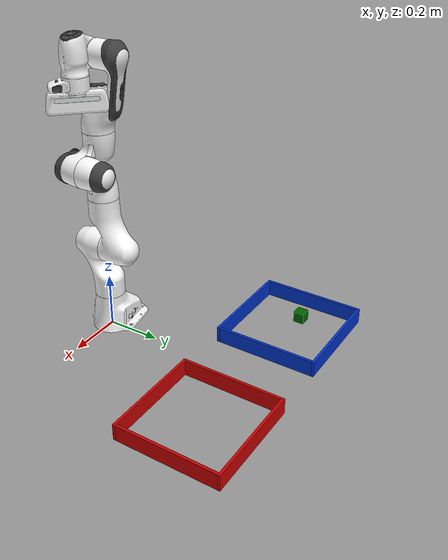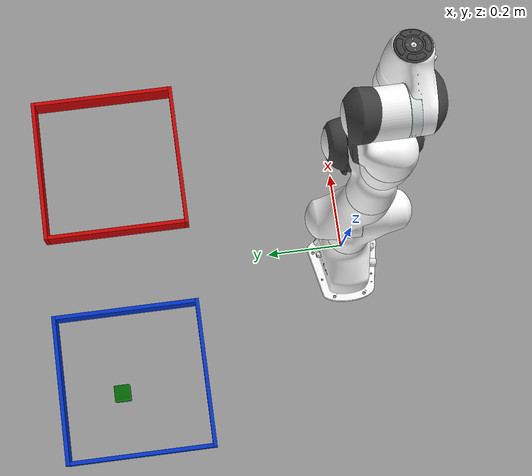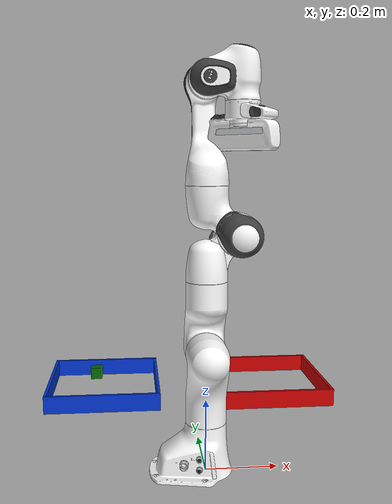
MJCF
<mujoco model="panda">
  <compiler angle="radian" meshdir="assets" autolimits="true"/>

  <default>
    <default class="panda">
      <material specular="0.5" shininess="0.25"/>
      <joint armature="0.1" damping="5" axis="0 0 1" range="-2.8973 2.8973"/>
      <general dyntype="none" biastype="affine" ctrlrange="-2.8973 2.8973" forcerange="-87 87"/>
      <default class="finger">
        <joint axis="0 1 0" type="slide" range="0 0.04" stiffness="1000" damping="100"/>
      </default>

      <default class="visual">
        <geom type="mesh" contype="0" conaffinity="0" group="2"/>
      </default>
      <default class="collision">
        <geom type="mesh" group="3"/>
        <default class="finger_collision">
          <geom type="box" size="0.01 0.005 0.035" pos="0 0.0055 0.0445"/>
        </default>
      </default>
    </default>
  </default>

  <asset>
    <material class="panda" name="white" rgba="1 1 1 1"/>
    <material class="panda" name="off_white" rgba="0.901961 0.921569 0.929412 1"/>
    <material class="panda" name="black" rgba="0.25 0.25 0.25 1"/>
    <material class="panda" name="green" rgba="0 1 0 1"/>
    <material class="panda" name="light_blue" rgba="0.039216 0.541176 0.780392 1"/>

    <!-- Collision meshes -->
    <mesh name="link0_c" file="link0.stl"/>
    <mesh name="link1_c" file="link1.stl"/>
    <mesh name="link2_c" file="link2.stl"/>
    <mesh name="link3_c" file="link3.stl"/>
    <mesh name="link4_c" file="link4.stl"/>
    <mesh name="link5_c0" file="link5_collision_0.obj"/>
    <mesh name="link5_c1" file="link5_collision_1.obj"/>
    <mesh name="link5_c2" file="link5_collision_2.obj"/>
    <mesh name="link6_c" file="link6.stl"/>
    <mesh name="link7_c" file="link7.stl"/>
    <mesh name="hand_c" file="hand.stl"/>

    <!-- Visual meshes -->
    <mesh file="link0_0.obj"/>
    <mesh file="link0_1.obj"/>
    <mesh file="link0_2.obj"/>
    <mesh file="link0_3.obj"/>
    <mesh file="link0_4.obj"/>
    <mesh file="link0_5.obj"/>
    <mesh file="link0_7.obj"/>
    <mesh file="link0_8.obj"/>
    <mesh file="link0_9.obj"/>
    <mesh file="link0_10.obj"/>
    <mesh file="link0_11.obj"/>
    <mesh file="link1.obj"/>
    <mesh file="link2.obj"/>
    <mesh file="link3_0.obj"/>
    <mesh file="link3_1.obj"/>
    <mesh file="link3_2.obj"/>
    <mesh file="link3_3.obj"/>
    <mesh file="link4_0.obj"/>
    <mesh file="link4_1.obj"/>
    <mesh file="link4_2.obj"/>
    <mesh file="link4_3.obj"/>
    <mesh file="link5_0.obj"/>
    <mesh file="link5_1.obj"/>
    <mesh file="link5_2.obj"/>
    <mesh file="link6_0.obj"/>
    <mesh file="link6_1.obj"/>
    <mesh file="link6_2.obj"/>
    <mesh file="link6_3.obj"/>
    <mesh file="link6_4.obj"/>
    <mesh file="link6_5.obj"/>
    <mesh file="link6_6.obj"/>
    <mesh file="link6_7.obj"/>
    <mesh file="link6_8.obj"/>
    <mesh file="link6_9.obj"/>
    <mesh file="link6_10.obj"/>
    <mesh file="link6_11.obj"/>
    <mesh file="link6_12.obj"/>
    <mesh file="link6_13.obj"/>
    <mesh file="link6_14.obj"/>
    <mesh file="link6_15.obj"/>
    <mesh file="link6_16.obj"/>
    <mesh file="link7_0.obj"/>
    <mesh file="link7_1.obj"/>
    <mesh file="link7_2.obj"/>
    <mesh file="link7_3.obj"/>
    <mesh file="link7_4.obj"/>
    <mesh file="link7_5.obj"/>
    <mesh file="link7_6.obj"/>
    <mesh file="link7_7.obj"/>
    <mesh file="hand_0.obj"/>
    <mesh file="hand_1.obj"/>
    <mesh file="hand_2.obj"/>
    <mesh file="hand_3.obj"/>
    <mesh file="hand_4.obj"/>
    <mesh file="finger_0.obj"/>
    <mesh file="finger_1.obj"/>
  </asset>

  <worldbody>
    <light name="top" pos="0 0 2" mode="trackcom"/>
    <body name="link0" childclass="panda">
      <geom mesh="link0_0" material="off_white" class="visual"/>
      <geom mesh="link0_1" material="black" class="visual"/>
      <geom mesh="link0_2" material="off_white" class="visual"/>
      <geom mesh="link0_3" material="black" class="visual"/>
      <geom mesh="link0_4" material="off_white" class="visual"/>
      <geom mesh="link0_5" material="black" class="visual"/>
      <geom mesh="link0_7" material="white" class="visual"/>
      <geom mesh="link0_8" material="white" class="visual"/>
      <geom mesh="link0_9" material="black" class="visual"/>
      <geom mesh="link0_10" material="off_white" class="visual"/>
      <geom mesh="link0_11" material="white" class="visual"/>
      <body name="link1" pos="0 0 0.333">
        <inertial mass="15" pos="0.003875 0.002081 -0.04762"
          fullinertia="0.70337 0.70661 0.0091170 -0.00013900 0.0067720 0.019169"/>
        <joint name="joint1"/>
        <geom material="white" mesh="link1" class="visual"/>
        <body name="link2" quat="1 -1 0 0">
          <inertial mass="5" pos="-0.003141 -0.02872 0.003495"
            fullinertia="0.0079620 2.8110e-2 2.5995e-2 -3.925e-3 1.0254e-2 7.04e-4"/>
          <joint name="joint2" range="-1.7628 1.7628"/>
          <geom material="white" mesh="link2" class="visual"/>
          <body name="link3" pos="0 -0.316 0" quat="1 1 0 0">
            <joint name="joint3"/>
            <inertial mass="5" pos="2.7518e-2 3.9252e-2 -6.6502e-2"
              fullinertia="3.7242e-2 3.6155e-2 1.083e-2 -4.761e-3 -1.1396e-2 -1.2805e-2"/>
            <geom mesh="link3_0" material="white" class="visual"/>
            <geom mesh="link3_1" material="white" class="visual"/>
            <geom mesh="link3_2" material="white" class="visual"/>
            <geom mesh="link3_3" material="black" class="visual"/>
            <body name="link4" pos="0.0825 0 0" quat="1 1 0 0">
              <inertial mass="3.587895" pos="-5.317e-2 1.04419e-1 2.7454e-2"
                fullinertia="2.5853e-2 1.9552e-2 2.8323e-2 7.796e-3 -1.332e-3 8.641e-3"/>
              <joint name="joint4" range="-3.0718 -0.0698"/>
              <geom mesh="link4_0" material="white" class="visual"/>
              <geom mesh="link4_1" material="white" class="visual"/>
              <geom mesh="link4_2" material="black" class="visual"/>
              <geom mesh="link4_3" material="white" class="visual"/>
              <body name="link5" pos="-0.0825 0.384 0" quat="1 -1 0 0">
                <inertial mass="1.225946" pos="-1.1953e-2 4.1065e-2 -3.8437e-2"
                  fullinertia="3.5549e-2 2.9474e-2 8.627e-3 -2.117e-3 -4.037e-3 2.29e-4"/>
                <joint name="joint5"/>
                <geom mesh="link5_0" material="black" class="visual"/>
                <geom mesh="link5_1" material="white" class="visual"/>
                <geom mesh="link5_2" material="white" class="visual"/>
                <body name="link6" quat="1 1 0 0">
                  <inertial mass="1.666555" pos="6.0149e-2 -1.4117e-2 -1.0517e-2"
                    fullinertia="1.964e-3 4.354e-3 5.433e-3 1.09e-4 -1.158e-3 3.41e-4"/>
                  <joint name="joint6" range="-0.0175 3.7525"/>
                  <geom mesh="link6_0" material="off_white" class="visual"/>
                  <geom mesh="link6_1" material="white" class="visual"/>
                  <geom mesh="link6_2" material="black" class="visual"/>
                  <geom mesh="link6_3" material="white" class="visual"/>
                  <geom mesh="link6_4" material="white" class="visual"/>
                  <geom mesh="link6_5" material="white" class="visual"/>
                  <geom mesh="link6_6" material="white" class="visual"/>
                  <geom mesh="link6_7" material="light_blue" class="visual"/>
                  <geom mesh="link6_8" material="light_blue" class="visual"/>
                  <geom mesh="link6_9" material="black" class="visual"/>
                  <geom mesh="link6_10" material="black" class="visual"/>
                  <geom mesh="link6_11" material="white" class="visual"/>
                  <geom mesh="link6_12" material="green" class="visual"/>
                  <geom mesh="link6_13" material="white" class="visual"/>
                  <geom mesh="link6_14" material="black" class="visual"/>
                  <geom mesh="link6_15" material="black" class="visual"/>
                  <geom mesh="link6_16" material="white" class="visual"/>
                  <body name="link7" pos="0.088 0 0" quat="1 1 0 0">
                    <inertial mass="1" pos="1.0517e-2 -4.252e-3 6.1597e-2"
                      fullinertia="1.2516e-2 1.0027e-2 4.815e-3 -4.28e-4 -1.196e-3 -7.41e-4"/>
                    <joint name="joint7"/>
                    <geom mesh="link7_0" material="white" class="visual"/>
                    <geom mesh="link7_1" material="black" class="visual"/>
                    <geom mesh="link7_2" material="black" class="visual"/>
                    <geom mesh="link7_3" material="black" class="visual"/>
                    <geom mesh="link7_4" material="black" class="visual"/>
                    <geom mesh="link7_5" material="black" class="visual"/>
                    <geom mesh="link7_6" material="black" class="visual"/>
                    <geom mesh="link7_7" material="white" class="visual"/>
                    <body name="hand" pos="0 0 0.107" quat="0.9238795 0 0 -0.3826834">
                      <geom mesh="hand_0" material="off_white" class="visual"/>
                      <geom mesh="hand_1" material="black" class="visual"/>
                      <geom mesh="hand_2" material="black" class="visual"/>
                      <geom mesh="hand_3" material="white" class="visual"/>
                      <geom mesh="hand_4" material="off_white" class="visual"/>
                      <body name="left_finger" pos="0 0 0.0584">
                        <inertial mass="1" pos="0 0 0" diaginertia="2.375e-6 2.375e-6 7.5e-7"/>
                        <joint name="finger_joint1" class="finger"/>
                          <geom name="left_fingertip_geom" mass="1" class="finger_collision" contype="0" conaffinity="0"/>
                      </body>
                      <body name="right_finger" pos="0 0 0.0584" quat="0 0 0 1">
                        <inertial mass="1" pos="0 0 0" diaginertia="2.375e-6 2.375e-6 7.5e-7"/>
                        <joint name="finger_joint2" class="finger"/>
                          <geom name="right_fingertip_geom" mass="1" class="finger_collision" contype="0" conaffinity="0"/>
                      </body>
                    </body>
                  </body>
                </body>
              </body>
            </body>
          </body>
        </body>
      </body>
    </body>

    <body name="binA" pos="-0.3 0.6 0">
      <geom name="binA1" pos="0 -0.19 0.035" size="0.195 0.005 0.03" type="box" rgba="0 0.2 0.8 1" contype="0" conaffinity="0"/>
      <geom name="binA2" pos="0 0.19 0.035" size="0.195 0.005 0.03" type="box" rgba="0 0.2 0.8 1" contype="0" conaffinity="0"/>
      <geom name="binA3" pos="0.19 0 0.035" size="0.005 0.185 0.03" type="box" rgba="0 0.2 0.8 1" contype="0" conaffinity="0"/>
      <geom name="binA4" pos="-0.19 0 0.035" size="0.005 0.185 0.03" type="box" rgba="0 0.2 0.8 1" contype="0" conaffinity="0"/>
    </body>
    <body name="binB" pos="0.3 0.6 0">
      <geom name="binB1" pos="0 -0.19 0.03" size="0.195 0.005 0.03" type="box" rgba="0.8 0 0 1" contype="0" conaffinity="0"/>
      <geom name="binB2" pos="0 0.19 0.03" size="0.195 0.005 0.03" type="box" rgba="0.8 0 0 1" contype="0" conaffinity="0"/>
      <geom name="binB3" pos="0.19 0 0.03" size="0.005 0.185 0.03" type="box" rgba="0.8 0 0 1" contype="0" conaffinity="0"/>
      <geom name="binB4" pos="-0.19 0 0.03" size="0.005 0.185 0.03" type="box" rgba="0.8 0 0 1" contype="0" conaffinity="0"/>
    </body>

    <body name="cube" pos="-0.33 0.63 0.07">
      <freejoint/>
      <geom name="cube_geom" size="0.02 0.02 0.02" type="box" mass="2" rgba="0 0.4 0 1" contype="0" conaffinity="0"/>
    </body>

    <body name="tablelink" pos="0 .2 0">
        <geom name="table_geom" group="4" pos="0.0 0.0 0.0" size="1.4 1.2 0.1" type="plane" mass="10" contype="0" conaffinity="0"/>
    </body>
  </worldbody>

  <equality>
    <joint joint1="finger_joint1" joint2="finger_joint2" solimp="0.95 0.99 0.001" solref="0.005 1"/>
  </equality>

  <contact>
    <pair geom1="cube_geom" geom2="table_geom"/>
    <pair geom1="cube_geom" geom2="left_fingertip_geom"/>
    <pair geom1="cube_geom" geom2="right_fingertip_geom"/>
    <pair geom1="left_fingertip_geom" geom2="right_fingertip_geom"/>
  </contact>

  <actuator>
    <general class="panda" name="actuator1" joint="joint1" gainprm="2500" biasprm="0 -2500 -650"/>
    <general class="panda" name="actuator2" joint="joint2" gainprm="3500" biasprm="0 -3500 -450"
      ctrlrange="-1.7628 1.7628"/>
    <general class="panda" name="actuator3" joint="joint3" gainprm="2000" biasprm="0 -2000 -350"/>
    <general class="panda" name="actuator4" joint="joint4" gainprm="2000" biasprm="0 -2000 -350"
      ctrlrange="-3.0718 -0.0698"/>
    <general class="panda" name="actuator5" joint="joint5" gainprm="1000" biasprm="0 -1000 -200" forcerange="-12 12"/>
    <general class="panda" name="actuator6" joint="joint6" gainprm="1000" biasprm="0 -1000 -200" forcerange="-12 12"
      ctrlrange="-0.0175 3.7525"/>
    <general class="panda" name="actuator7" joint="joint7" gainprm="1000" biasprm="0 -1000 -200" forcerange="-12 12"/>
    <!-- Remap original ctrlrange (0, 0.04) to (0, 255): 0.04 * 100 / 255 = 0.015686 -->
    <general class="panda" name="actuator8" joint="finger_joint1" forcerange="-100 100" ctrlrange="0 255"
      gainprm="0.015686 0 0" biasprm="0 -100 -10"/>
    <general class="panda" name="actuator9" joint="finger_joint2" forcerange="-100 100" ctrlrange="0 255"
      gainprm="0.015686 0 0" biasprm="0 -100 -10"/>
  </actuator>
</mujoco>
